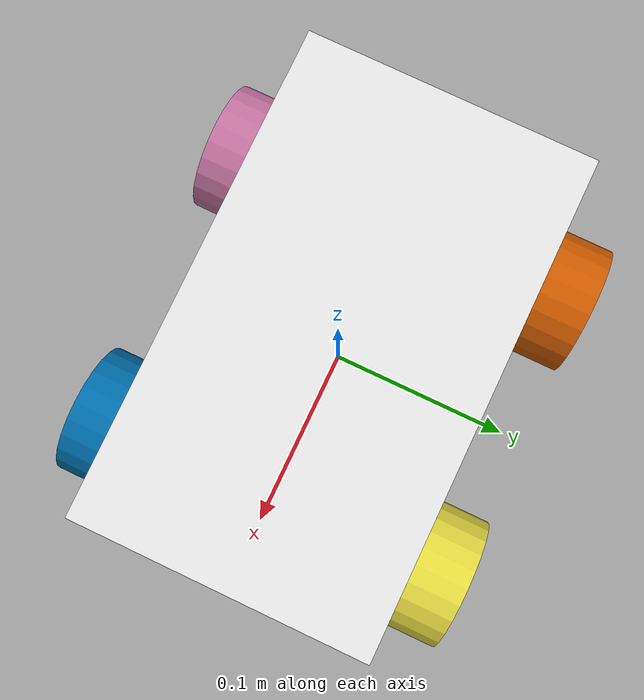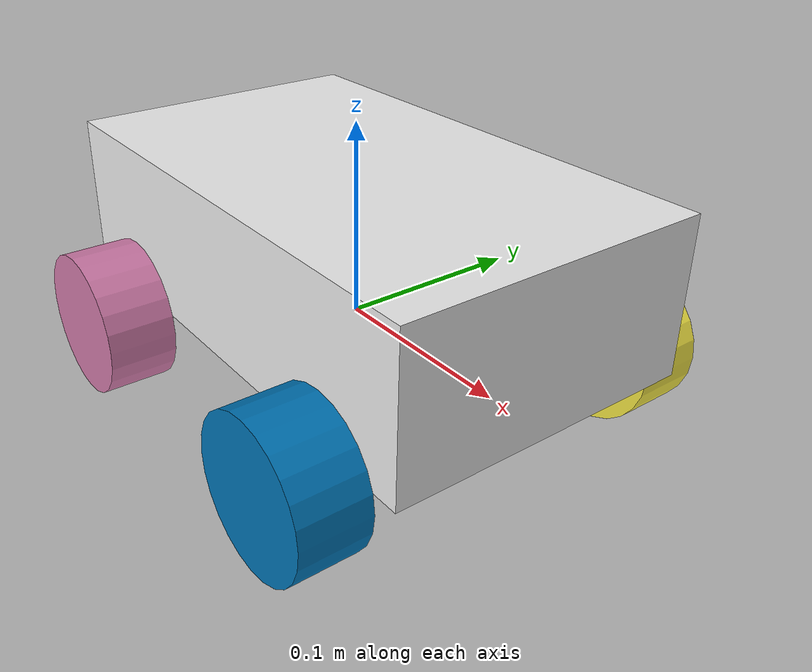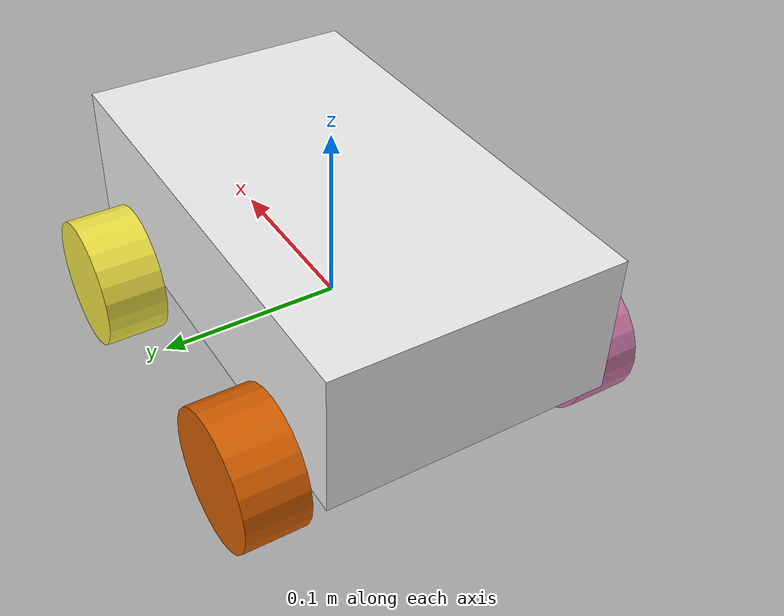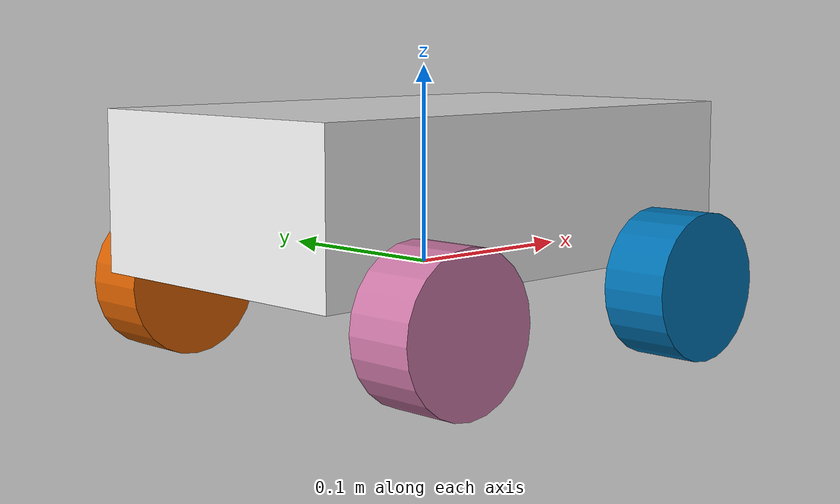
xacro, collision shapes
<?xml version="1.0"?>
<robot xmlns:xacro="http://www.ros.org/wiki/xacro" >

    <xacro:include filename="inertial_macros.xacro"/>
    <xacro:include filename="materials.xacro"/>

    <!-- Define robot constants -->
    <xacro:property name="base_width"  value="0.145"/>
    <xacro:property name="base_length" value="0.240"/>
    <xacro:property name="base_height" value="0.060"/>
    <xacro:property name="base_mass"   value="1.500"/>

    <xacro:property name="wheel_radius" value="0.0375"/>
    <xacro:property name="wheel_width"  value="0.035"/>
    <xacro:property name="wheel_ygap"   value="0.025"/>
    <xacro:property name="wheel_zoff"   value="0.010"/>
    <xacro:property name="wheel_xoff"   value="0.085"/>
    <xacro:property name="wheel_mass"   value="0.100"/>

    <xacro:property name="imu_width"  value="0.010"/>
    <xacro:property name="imu_length" value="0.010"/>
    <xacro:property name="imu_height" value="0.008"/>
    <xacro:property name="imu_mass"   value="0.010"/>

    <xacro:property name="lidar_radius" value="0.0375"/>
    <xacro:property name="lidar_width"  value="0.0380"/>
    <xacro:property name="lidar_mass"   value="0.2000"/>

    <xacro:property name="board_1_width"  value="0.060"/>
    <xacro:property name="board_1_length" value="0.080"/>
    <xacro:property name="board_1_height" value="0.015"/>
    <xacro:property name="board_1_mass"   value="0.100"/>

    <xacro:property name="board_2_width"  value="0.060"/>
    <xacro:property name="board_2_length" value="0.090"/>
    <xacro:property name="board_2_height" value="0.025"/>
    <xacro:property name="board_2_mass"   value="0.200"/>

    <!-- Define some commonly used intertial properties  -->
    <xacro:macro name="box_inertia" params="m w h d">
        <inertial>
        <origin xyz="0 0 0" rpy="${pi/2} 0 ${pi/2}"/>
        <mass value="${m}"/>
        <inertia ixx="${(m/12) * (h*h + d*d)}" ixy="0.0" ixz="0.0" iyy="${(m/12) * (w*w + d*d)}" iyz="0.0" izz="${(m/12) * (w*w + h*h)}"/>
        </inertial>
    </xacro:macro>

    <xacro:macro name="cylinder_inertia" params="m r h">
        <inertial>
        <origin xyz="0 0 0" rpy="${pi/2} 0 0" />
        <mass value="${m}"/>
        <inertia ixx="${(m/12) * (3*r*r + h*h)}" ixy = "0" ixz = "0" iyy="${(m/12) * (3*r*r + h*h)}" iyz = "0" izz="${(m/2) * (r*r)}"/>
        </inertial>
    </xacro:macro>

    <!-- BASE LINK -->

    <link name="base_link">

    </link>

    <!-- BASE_FOOTPRINT LINK -->

    <joint name="base_footprint_joint" type="fixed">
        <parent link="base_link"/>
        <child link="base_footprint"/>
        <origin xyz="0 0 0" rpy="0 0 0"/>
    </joint>

    <link name="base_footprint">
    </link>

    <!-- CHASSIS LINK -->

    <joint name="chassis_joint" type="fixed">
        <parent link="base_link"/>
        <child link="chassis"/>
        <origin xyz="-0.135 0 0"/>
    </joint>

    <link name="chassis">
        <visual>
            <origin xyz="0.135 0 0.04"/>
            <geometry>
                <box size="0.27 0.16 0.08"/>
            </geometry>
            <material name="white"/>
        </visual>
        <collision>
            <origin xyz="0.135 0 0.04"/>
            <geometry>
                <box size="0.27 0.16 0.08"/>
            </geometry>
        </collision>
        <xacro:inertial_box mass="0.5" x="0.27" y="0.16" z="0.08">
            <origin xyz="0.135 0 0.04" rpy="0 0 0" />
        </xacro:inertial_box>
    </link>

    <gazebo reference="chassis">
        <material>Gazebo/White</material>
    </gazebo>

<!-- Wheels -->
  <xacro:macro name="wheel" params="prefix x_reflect y_reflect">
    <link name="${prefix}_link">
      <visual>
        <origin xyz="0 0 0" rpy="0 0 0"/>
        <geometry>
            <mesh filename="file:///workspace/src/my_bot/meshes/omni_wheel.dae" scale="0.325 0.325 0.325"/>
        </geometry>
      </visual>

      <collision>
        <origin xyz="0 0 0" rpy="${pi/2} 0 0"/>
        <geometry>
          <cylinder radius="${wheel_radius}" length="${wheel_width}"/>
        </geometry>
      </collision>

      <xacro:cylinder_inertia m="${wheel_mass}" r="${wheel_radius}" h="${wheel_width}"/>
    </link>

    <joint name="${prefix}_joint" type="continuous">
      <parent link="base_link"/>
      <child  link="${prefix}_link"/>
      <origin xyz="${x_reflect*wheel_xoff} ${y_reflect*(base_width/2+wheel_ygap)} ${-wheel_zoff}" rpy="0 0 0"/>
      <axis xyz="0 1 0"/>
    </joint>

  </xacro:macro>

  <xacro:wheel prefix="front_left_wheel"  x_reflect="1"  y_reflect="1"  />
  <xacro:wheel prefix="front_right_wheel" x_reflect="1"  y_reflect="-1" />
  <xacro:wheel prefix="rear_left_wheel"   x_reflect="-1" y_reflect="1"  />
  <xacro:wheel prefix="rear_right_wheel"  x_reflect="-1" y_reflect="-1" />

    <link name="imu_link">
    <visual>
      <geometry>
        <box size="${imu_length} ${imu_width} ${imu_height}"/>
      </geometry>
      <material name="Dark Blue">
        <color rgba="0.0 0.0 0.4 1.0"/>
      </material>
    </visual>

    <collision>
      <geometry>
        <box size="${imu_length} ${imu_width} ${imu_height}"/>
      </geometry>
    </collision>

    <xacro:box_inertia m="${imu_mass}" w="${imu_width}" d="${imu_length}" h="${imu_height}"/>
  </link>

  <joint name="imu_joint" type="fixed">
    <parent link="base_link"/>
    <child  link="imu_link"/>
    <origin xyz="0.02 -0.02 ${base_height/2 + 0.02}"/>
  </joint>

  <gazebo reference="imu_link">
    <sensor name="imu_sensor" type="imu">
      <plugin filename="libgazebo_ros_imu_sensor.so" name="imu_plugin">
        <ros>
          <namespace>/demo</namespace>
          <remapping>~/out:=imu</remapping>
        </ros>
        <initial_orientation_as_reference>false</initial_orientation_as_reference>
      </plugin>
      <always_on>true</always_on>
      <update_rate>100</update_rate>
      <visualize>true</visualize>
     <imu>
      <angular_velocity>
        <x>
          <noise type="gaussian">
              <mean>0.0</mean>
              <stddev>2e-4</stddev>
              <bias_mean>0.0000075</bias_mean>
              <bias_stddev>0.0000008</bias_stddev>
            </noise>
          </x>
          <y>
            <noise type="gaussian">
              <mean>0.0</mean>
              <stddev>2e-4</stddev>
              <bias_mean>0.0000075</bias_mean>
              <bias_stddev>0.0000008</bias_stddev>
            </noise>
          </y>
          <z>
            <noise type="gaussian">
              <mean>0.0</mean>
              <stddev>2e-4</stddev>
              <bias_mean>0.0000075</bias_mean>
              <bias_stddev>0.0000008</bias_stddev>
            </noise>
          </z>
        </angular_velocity>
        <linear_acceleration>
          <x>
            <noise type="gaussian">
              <mean>0.0</mean>
              <stddev>1.7e-2</stddev>
              <bias_mean>0.1</bias_mean>
              <bias_stddev>0.001</bias_stddev>
            </noise>
          </x>
          <y>
            <noise type="gaussian">
              <mean>0.0</mean>
              <stddev>1.7e-2</stddev>
              <bias_mean>0.1</bias_mean>
              <bias_stddev>0.001</bias_stddev>
            </noise>
          </y>
          <z>
            <noise type="gaussian">
              <mean>0.0</mean>
              <stddev>1.7e-2</stddev>
              <bias_mean>0.1</bias_mean>
              <bias_stddev>0.001</bias_stddev>
            </noise>
          </z>
        </linear_acceleration>
      </imu>
    </sensor>
  </gazebo>

</robot>
